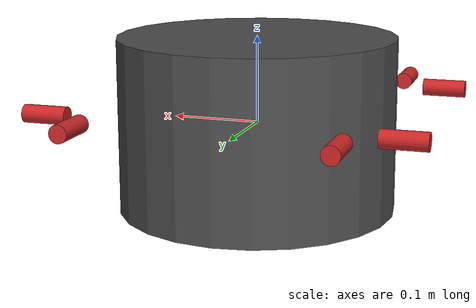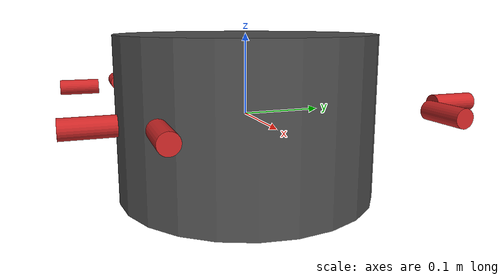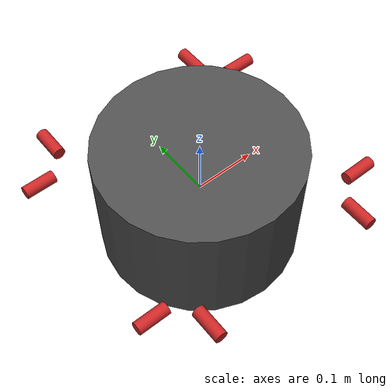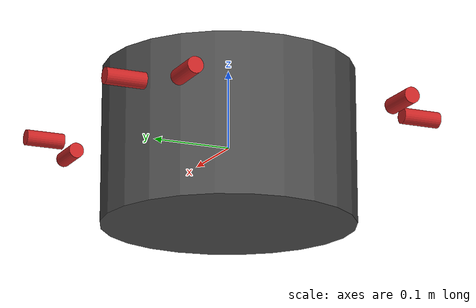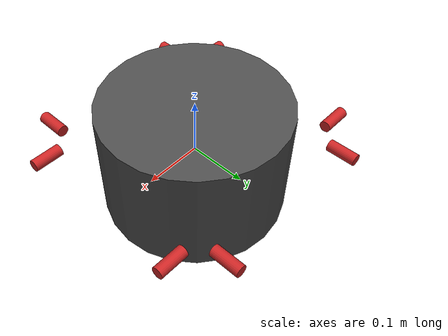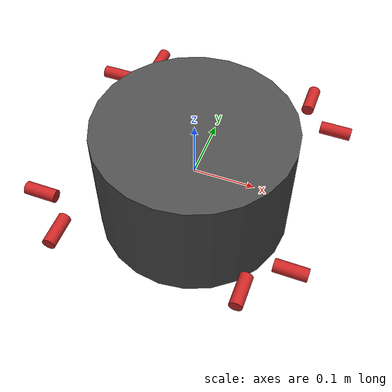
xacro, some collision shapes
<?xml version='1.0'?>
<robot xmlns:xacro="http://www.ros.org/wiki/xacro" name="slider">
    <xacro:include filename="dimensions.xacro"/>

    <!-- Body -->
    <link name="body">
        <collision name="body_col">
            <geometry>
                <cylinder radius="${body_r}" length="${body_l}"/>
            </geometry>
        </collision>

        <visual name="body_vis">
            <origin rpy="0 0 ${pi}"/>
            <geometry>
                <mesh filename="$(find slider_description)/meshes/slider_model_05.dae"/>
            </geometry>
        </visual>

        <inertial>
            <origin xyz="0 0 0" rpy="0 0 0"/>
            <mass value="${mass}" />
            <inertia
                ixx="${Ixx}"
                ixy="${Ixy}"
                ixz="${Ixz}"
                iyy="${Iyy}"
                iyz="${Iyz}"
                izz="${Izz}"
            />
        </inertial>
    </link>

    <!-- Thrusters -->
    <link name="T11">
        <visual>
            <origin xyz="0 0 ${thruster_l / 2}" rpy="0 ${pi/2} 0"/>
            <geometry>
                <cylinder length="${thruster_l}" radius="${thruster_r}"/>
            </geometry>
        </visual>
    </link>
    <joint name="T11_fix" type="fixed">
        <origin xyz = "${thruster_d2} ${-thruster_d1} ${thruster_z}" rpy="0 0 0"/>
        <parent link = "body"/>
        <child link = "T11"/>
    </joint>

    <link name="T12">
        <visual>
            <origin xyz="0 0 ${thruster_l / 2}" rpy="0 ${pi/2} 0"/>
            <geometry>
                <cylinder length="${thruster_l}" radius="${thruster_r}"/>
            </geometry>
        </visual>
    </link>
    <joint name="T12_fix" type="fixed">
        <origin xyz = "${thruster_d1} ${-thruster_d2} ${thruster_z}" rpy="0 0 ${3*pi/2}"/>
        <parent link = "body"/>
        <child link = "T12"/>
    </joint>

    <link name="T21">
        <visual>
            <origin xyz="0 0 ${thruster_l / 2}" rpy="0 ${pi/2} 0"/>
            <geometry>
                <cylinder length="${thruster_l}" radius="${thruster_r}"/>
            </geometry>
        </visual>
    </link>
    <joint name="T21_fix" type="fixed">
        <origin xyz = "${-thruster_d2} ${-thruster_d1} ${thruster_z}" rpy="0 0 ${pi}"/>
        <parent link = "body"/>
        <child link = "T21"/>
    </joint>

    <link name="T22">
        <visual>
            <origin xyz="0 0 ${thruster_l / 2}" rpy="0 ${pi/2} 0"/>
            <geometry>
                <cylinder length="${thruster_l}" radius="${thruster_r}"/>
            </geometry>
        </visual>
    </link>
    <joint name="T22_fix" type="fixed">
        <origin xyz = "${-thruster_d1} ${-thruster_d2} ${thruster_z}" rpy="0 0 ${3*pi/2}"/>
        <parent link = "body"/>
        <child link = "T22"/>
    </joint>

    <link name="T31">
        <visual>
            <origin xyz="0 0 ${thruster_l / 2}" rpy="0 ${pi/2} 0"/>
            <geometry>
                <cylinder length="${thruster_l}" radius="${thruster_r}"/>
            </geometry>
        </visual>
    </link>
    <joint name="T31_fix" type="fixed">
        <origin xyz = "${-thruster_d2} ${thruster_d1} ${thruster_z}" rpy="0 0 ${pi}"/>
        <parent link = "body"/>
        <child link = "T31"/>
    </joint>

    <link name="T32">
        <visual>
            <origin xyz="0 0 ${thruster_l / 2}" rpy="0 ${pi/2} 0"/>
            <geometry>
                <cylinder length="${thruster_l}" radius="${thruster_r}"/>
            </geometry>
        </visual>
    </link>
    <joint name="T32_fix" type="fixed">
        <origin xyz = "${-thruster_d1} ${thruster_d2} ${thruster_z}" rpy="0 0 ${pi/2}"/>
        <parent link = "body"/>
        <child link = "T32"/>
    </joint>

    <link name="T41">
        <visual>
            <origin xyz="0 0 ${thruster_l / 2}" rpy="0 ${pi/2} 0"/>
            <geometry>
                <cylinder length="${thruster_l}" radius="${thruster_r}"/>
            </geometry>
        </visual>
    </link>
    <joint name="T41_fix" type="fixed">
        <origin xyz = "${thruster_d2} ${thruster_d1} ${thruster_z}" rpy="0 0 0"/>
        <parent link = "body"/>
        <child link = "T41"/>
    </joint>

    <link name="T42">
        <visual>
            <origin xyz="0 0 ${thruster_l / 2}" rpy="0 ${pi/2} 0"/>
            <geometry>
                <cylinder length="${thruster_l}" radius="${thruster_r}"/>
            </geometry>
        </visual>
    </link>
    <joint name="T42_fix" type="fixed">
        <origin xyz = "${thruster_d1} ${thruster_d2} ${thruster_z}" rpy="0 0 ${pi/2}"/>
        <parent link = "body"/>
        <child link = "T42"/>
    </joint>

    <!-- Camera -->

    <xacro:include filename="gazebo.xacro"/>
</robot>

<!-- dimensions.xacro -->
<robot xmlns:xacro="http://www.ros.org/wiki/xacro">

    <!-- Body -->
    <xacro:property name="body_r" value="0.16"/>
    <xacro:property name="body_l" value="0.2"/>

    <!-- Thruster -->
    <xacro:property name="thruster_r" value="0.01"/>
    <xacro:property name="thruster_l" value="0.05"/>
    <xacro:property name="thruster_z" value="0.0"/>
    <xacro:property name="thruster_d1" value="0.14"/>
    <xacro:property name="thruster_d2" value="0.195"/>

    <!-- Inertial -->
    <xacro:property name="mass" value="4.436"/>
    <xacro:property name="Ixx" value="0.05979078"/>
    <xacro:property name="Ixy" value="-0.001432319"/>
    <xacro:property name="Ixz" value="-0.00004321"/>
    <xacro:property name="Iyy" value="0.066776813"/>
    <xacro:property name="Iyz" value="0.000032564"/>
    <xacro:property name="Izz" value="0.109214481"/>

</robot>
